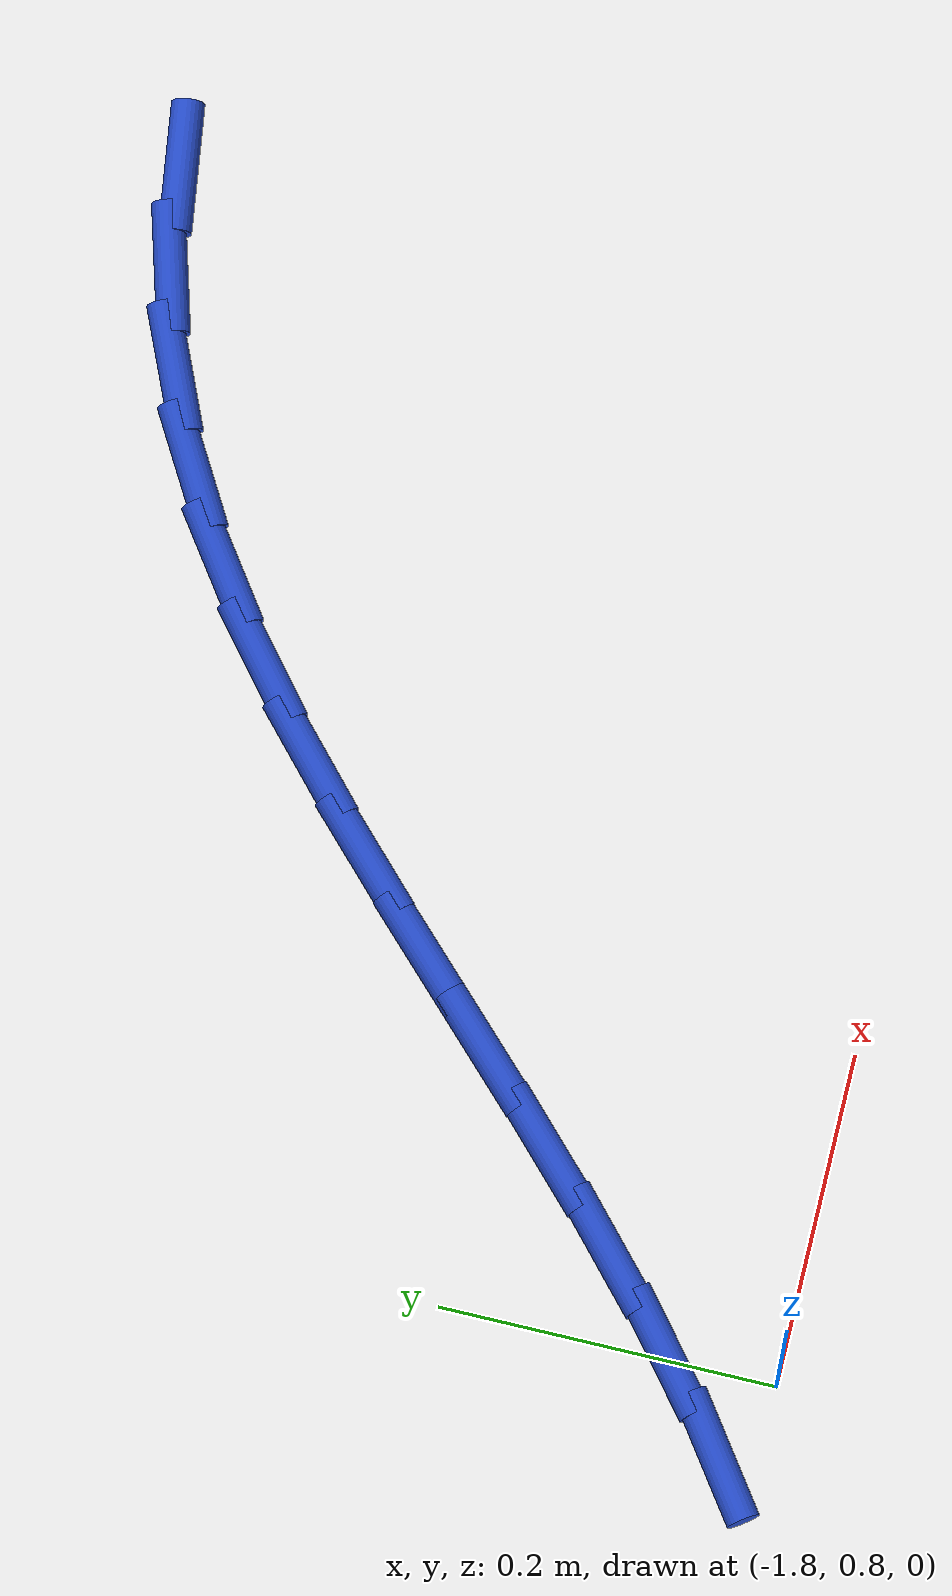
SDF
<sdf version="1.6">
 <world name="default">
  <model name="ground_plane">
   <static>1</static>
   <link name="link">
    <collision name="collision">
     <geometry><plane><normal>0 0 1</normal><size>100 100</size></plane></geometry>
     <surface><friction><ode><mu>100</mu><mu2>50</mu2></ode></friction></surface>
    </collision>
    <visual name="visual">
     <cast_shadows>0</cast_shadows>
     <geometry><plane><normal>0 0 1</normal><size>100 100</size></plane></geometry>
     <material>
      <script><uri>file://media/materials/scripts/gazebo.material</uri><name>Gazebo/WhiteGlow</name></script>
     </material>
    </visual>
   </link>
  </model>
  <model name="line">
   <link name="link_29">
    <pose>-1.174781524597517 1.306607555549026 0.01 0 1.57 0.14162374401599734</pose>
    <collision name="collision">
     <geometry><cylinder><radius>0.01</radius><length>0.08</length></cylinder></geometry>
    </collision>
    <visual name="visual">
     <material>
      <script><name>Gazebo/Blue</name><uri>file://media/materials/scripts/gazebo.material</uri></script>
     </material>
     <geometry><cylinder><radius>0.01</radius><length>0.08</length></cylinder></geometry>
    </visual>
   </link>
   <link name="link_30">
    <pose>-1.2360886307648864 1.297866494695999 0.01 0 1.57 0.28131069394117375</pose>
    <collision name="collision">
     <geometry><cylinder><radius>0.01</radius><length>0.08</length></cylinder></geometry>
    </collision>
    <visual name="visual">
     <material>
      <script><name>Gazebo/Blue</name><uri>file://media/materials/scripts/gazebo.material</uri></script>
     </material>
     <geometry><cylinder><radius>0.01</radius><length>0.08</length></cylinder></geometry>
    </visual>
   </link>
   <link name="link_31">
    <pose>-1.2944572788540885 1.2809994768626793 0.01 0 1.57 0.4150979803015371</pose>
    <collision name="collision">
     <geometry><cylinder><radius>0.01</radius><length>0.08</length></cylinder></geometry>
    </collision>
    <visual name="visual">
     <material>
      <script><name>Gazebo/Blue</name><uri>file://media/materials/scripts/gazebo.material</uri></script>
     </material>
     <geometry><cylinder><radius>0.01</radius><length>0.08</length></cylinder></geometry>
    </visual>
   </link>
   <link name="link_32">
    <pose>-1.349965785318244 1.2565365601436238 0.01 0 1.57 0.5285830776166482</pose>
    <collision name="collision">
     <geometry><cylinder><radius>0.01</radius><length>0.08</length></cylinder></geometry>
    </collision>
    <visual name="visual">
     <material>
      <script><name>Gazebo/Blue</name><uri>file://media/materials/scripts/gazebo.material</uri></script>
     </material>
     <geometry><cylinder><radius>0.01</radius><length>0.08</length></cylinder></geometry>
    </visual>
   </link>
   <link name="link_33">
    <pose>-1.4030714140854976 1.2255220636076583 0.01 0 1.57 0.6199049341625079</pose>
    <collision name="collision">
     <geometry><cylinder><radius>0.01</radius><length>0.08</length></cylinder></geometry>
    </collision>
    <visual name="visual">
     <material>
      <script><name>Gazebo/Blue</name><uri>file://media/materials/scripts/gazebo.material</uri></script>
     </material>
     <geometry><cylinder><radius>0.01</radius><length>0.08</length></cylinder></geometry>
    </visual>
   </link>
   <link name="link_34">
    <pose>-1.4542340867767702 1.1890039130178534 0.01 0 1.57 0.689658427258005</pose>
    <collision name="collision">
     <geometry><cylinder><radius>0.01</radius><length>0.08</length></cylinder></geometry>
    </collision>
    <visual name="visual">
     <material>
      <script><name>Gazebo/Blue</name><uri>file://media/materials/scripts/gazebo.material</uri></script>
     </material>
     <geometry><cylinder><radius>0.01</radius><length>0.08</length></cylinder></geometry>
    </visual>
   </link>
   <link name="link_35">
    <pose>-1.5039137250129837 1.1480300341372787 0.01 0 1.57 0.7394832680603982</pose>
    <collision name="collision">
     <geometry><cylinder><radius>0.01</radius><length>0.08</length></cylinder></geometry>
    </collision>
    <visual name="visual">
     <material>
      <script><name>Gazebo/Blue</name><uri>file://media/materials/scripts/gazebo.material</uri></script>
     </material>
     <geometry><cylinder><radius>0.01</radius><length>0.08</length></cylinder></geometry>
    </visual>
   </link>
   <link name="link_36">
    <pose>-1.55257025041506 1.103648352729005 0.01 0 1.57 0.7711451343296243</pose>
    <collision name="collision">
     <geometry><cylinder><radius>0.01</radius><length>0.08</length></cylinder></geometry>
    </collision>
    <visual name="visual">
     <material>
      <script><name>Gazebo/Blue</name><uri>file://media/materials/scripts/gazebo.material</uri></script>
     </material>
     <geometry><cylinder><radius>0.01</radius><length>0.08</length></cylinder></geometry>
    </visual>
   </link>
   <link name="link_37">
    <pose>-1.600663584603921 1.0569067945561021 0.01 0 1.57 0.7860587444876287</pose>
    <collision name="collision">
     <geometry><cylinder><radius>0.01</radius><length>0.08</length></cylinder></geometry>
    </collision>
    <visual name="visual">
     <material>
      <script><name>Gazebo/Blue</name><uri>file://media/materials/scripts/gazebo.material</uri></script>
     </material>
     <geometry><cylinder><radius>0.01</radius><length>0.08</length></cylinder></geometry>
    </visual>
   </link>
   <link name="link_38">
    <pose>-1.6486536492004875 1.0088532853816408 0.01 0 1.57 0.7850962709082987</pose>
    <collision name="collision">
     <geometry><cylinder><radius>0.01</radius><length>0.08</length></cylinder></geometry>
    </collision>
    <visual name="visual">
     <material>
      <script><name>Gazebo/Blue</name><uri>file://media/materials/scripts/gazebo.material</uri></script>
     </material>
     <geometry><cylinder><radius>0.01</radius><length>0.08</length></cylinder></geometry>
    </visual>
   </link>
   <link name="link_39">
    <pose>-1.6970003658256818 0.9605357509686907 0.01 0 1.57 0.7685465196101582</pose>
    <collision name="collision">
     <geometry><cylinder><radius>0.01</radius><length>0.08</length></cylinder></geometry>
    </collision>
    <visual name="visual">
     <material>
      <script><name>Gazebo/Blue</name><uri>file://media/materials/scripts/gazebo.material</uri></script>
     </material>
     <geometry><cylinder><radius>0.01</radius><length>0.08</length></cylinder></geometry>
    </visual>
   </link>
   <link name="link_40">
    <pose>-1.746163656100426 0.9130021170803224 0.01 0 1.57 0.736156750266665</pose>
    <collision name="collision">
     <geometry><cylinder><radius>0.01</radius><length>0.08</length></cylinder></geometry>
    </collision>
    <visual name="visual">
     <material>
      <script><name>Gazebo/Blue</name><uri>file://media/materials/scripts/gazebo.material</uri></script>
     </material>
     <geometry><cylinder><radius>0.01</radius><length>0.08</length></cylinder></geometry>
    </visual>
   </link>
   <link name="link_41">
    <pose>-1.7966034416456405 0.8673003094796063 0.01 0 1.57 0.6872480475786399</pose>
    <collision name="collision">
     <geometry><cylinder><radius>0.01</radius><length>0.08</length></cylinder></geometry>
    </collision>
    <visual name="visual">
     <material>
      <script><name>Gazebo/Blue</name><uri>file://media/materials/scripts/gazebo.material</uri></script>
     </material>
     <geometry><cylinder><radius>0.01</radius><length>0.08</length></cylinder></geometry>
    </visual>
   </link>
   <link name="link_42">
    <pose>-1.848779644082248 0.8244782539296118 0.01 0 1.57 0.6212369272054699</pose>
    <collision name="collision">
     <geometry><cylinder><radius>0.01</radius><length>0.08</length></cylinder></geometry>
    </collision>
    <visual name="visual">
     <material>
      <script><name>Gazebo/Blue</name><uri>file://media/materials/scripts/gazebo.material</uri></script>
     </material>
     <geometry><cylinder><radius>0.01</radius><length>0.08</length></cylinder></geometry>
    </visual>
   </link>
  </model>
 </world>
</sdf>
